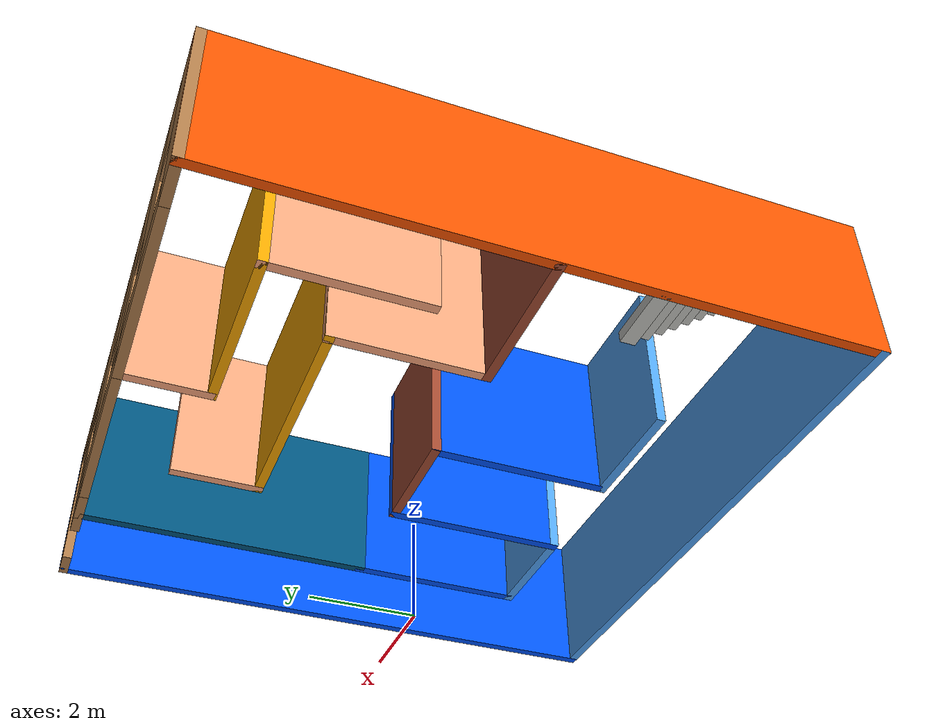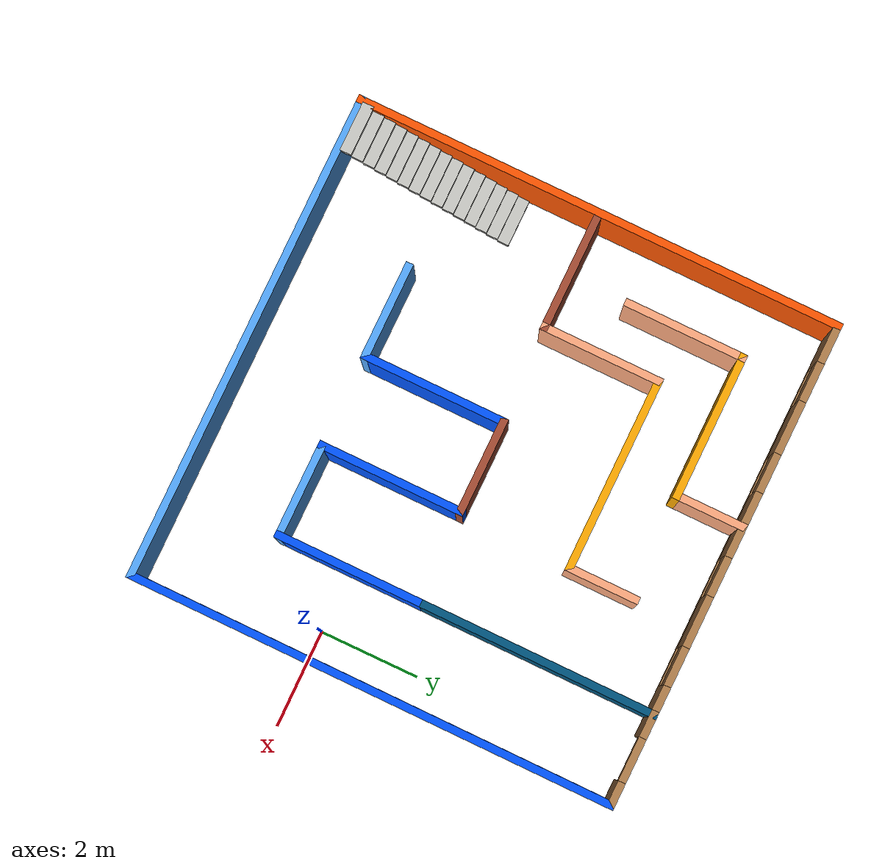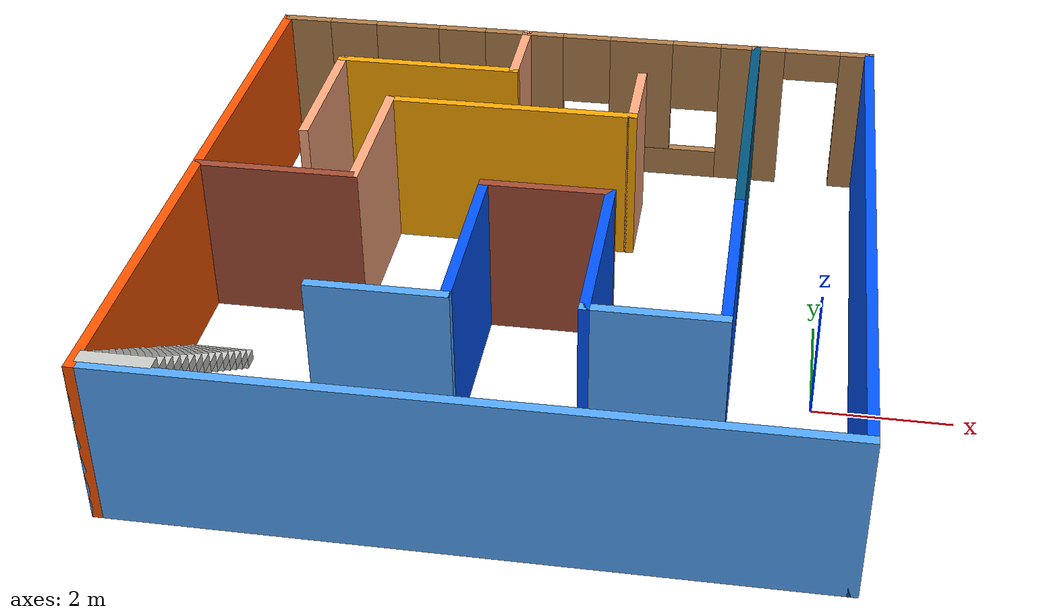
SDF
<?xml version='1.0'?>
<sdf version='1.6'>
  <model name='building_M'>
    <pose frame=''>-4.32693 1.3916 0 0 -0 0</pose>
    <link name='Stairs_0'>
      <visual name='Stairs_0_Visual_0'>
        <pose frame=''>-4.40231 -1.49296 0.083333 0 -0 0</pose>
        <geometry>
          <box>
            <size>1 0.233333 0.166667</size>
          </box>
        </geometry>
        <material>
          <script>
            <uri>file://media/materials/scripts/gazebo.material</uri>
            <name>Gazebo/CeilingTiled</name>
          </script>
          <ambient>1 1 1 1</ambient>
        </material>
      </visual>
      <collision name='Stairs_0_Collision_0'>
        <geometry>
          <box>
            <size>1 0.233333 0.166667</size>
          </box>
        </geometry>
        <pose frame=''>-4.40231 -1.49296 0.083333 0 -0 0</pose>
      </collision>
      <visual name='Stairs_0_Visual_1'>
        <pose frame=''>-4.40231 -1.72629 0.25 0 -0 0</pose>
        <geometry>
          <box>
            <size>1 0.233333 0.166667</size>
          </box>
        </geometry>
        <material>
          <script>
            <uri>file://media/materials/scripts/gazebo.material</uri>
            <name>Gazebo/CeilingTiled</name>
          </script>
          <ambient>1 1 1 1</ambient>
        </material>
      </visual>
      <collision name='Stairs_0_Collision_1'>
        <geometry>
          <box>
            <size>1 0.233333 0.166667</size>
          </box>
        </geometry>
        <pose frame=''>-4.40231 -1.72629 0.25 0 -0 0</pose>
      </collision>
      <visual name='Stairs_0_Visual_2'>
        <pose frame=''>-4.40231 -1.95962 0.416667 0 -0 0</pose>
        <geometry>
          <box>
            <size>1 0.233333 0.166667</size>
          </box>
        </geometry>
        <material>
          <script>
            <uri>file://media/materials/scripts/gazebo.material</uri>
            <name>Gazebo/CeilingTiled</name>
          </script>
          <ambient>1 1 1 1</ambient>
        </material>
      </visual>
      <collision name='Stairs_0_Collision_2'>
        <geometry>
          <box>
            <size>1 0.233333 0.166667</size>
          </box>
        </geometry>
        <pose frame=''>-4.40231 -1.95962 0.416667 0 -0 0</pose>
      </collision>
      <visual name='Stairs_0_Visual_3'>
        <pose frame=''>-4.40231 -2.19295 0.583333 0 -0 0</pose>
        <geometry>
          <box>
            <size>1 0.233333 0.166667</size>
          </box>
        </geometry>
        <material>
          <script>
            <uri>file://media/materials/scripts/gazebo.material</uri>
            <name>Gazebo/CeilingTiled</name>
          </script>
          <ambient>1 1 1 1</ambient>
        </material>
      </visual>
      <collision name='Stairs_0_Collision_3'>
        <geometry>
          <box>
            <size>1 0.233333 0.166667</size>
          </box>
        </geometry>
        <pose frame=''>-4.40231 -2.19295 0.583333 0 -0 0</pose>
      </collision>
      <visual name='Stairs_0_Visual_4'>
        <pose frame=''>-4.40231 -2.42629 0.75 0 -0 0</pose>
        <geometry>
          <box>
            <size>1 0.233333 0.166667</size>
          </box>
        </geometry>
        <material>
          <script>
            <uri>file://media/materials/scripts/gazebo.material</uri>
            <name>Gazebo/CeilingTiled</name>
          </script>
          <ambient>1 1 1 1</ambient>
        </material>
      </visual>
      <collision name='Stairs_0_Collision_4'>
        <geometry>
          <box>
            <size>1 0.233333 0.166667</size>
          </box>
        </geometry>
        <pose frame=''>-4.40231 -2.42629 0.75 0 -0 0</pose>
      </collision>
      <visual name='Stairs_0_Visual_5'>
        <pose frame=''>-4.40231 -2.65962 0.916667 0 -0 0</pose>
        <geometry>
          <box>
            <size>1 0.233333 0.166667</size>
          </box>
        </geometry>
        <material>
          <script>
            <uri>file://media/materials/scripts/gazebo.material</uri>
            <name>Gazebo/CeilingTiled</name>
          </script>
          <ambient>1 1 1 1</ambient>
        </material>
      </visual>
      <collision name='Stairs_0_Collision_5'>
        <geometry>
          <box>
            <size>1 0.233333 0.166667</size>
          </box>
        </geometry>
        <pose frame=''>-4.40231 -2.65962 0.916667 0 -0 0</pose>
      </collision>
      <visual name='Stairs_0_Visual_6'>
        <pose frame=''>-4.40231 -2.89296 1.08333 0 -0 0</pose>
        <geometry>
          <box>
            <size>1 0.233333 0.166667</size>
          </box>
        </geometry>
        <material>
          <script>
            <uri>file://media/materials/scripts/gazebo.material</uri>
            <name>Gazebo/CeilingTiled</name>
          </script>
          <ambient>1 1 1 1</ambient>
        </material>
      </visual>
      <collision name='Stairs_0_Collision_6'>
        <geometry>
          <box>
            <size>1 0.233333 0.166667</size>
          </box>
        </geometry>
        <pose frame=''>-4.40231 -2.89296 1.08333 0 -0 0</pose>
      </collision>
      <visual name='Stairs_0_Visual_7'>
        <pose frame=''>-4.40231 -3.12629 1.25 0 -0 0</pose>
        <geometry>
          <box>
            <size>1 0.233333 0.166667</size>
          </box>
        </geometry>
        <material>
          <script>
            <uri>file://media/materials/scripts/gazebo.material</uri>
            <name>Gazebo/CeilingTiled</name>
          </script>
          <ambient>1 1 1 1</ambient>
        </material>
      </visual>
      <collision name='Stairs_0_Collision_7'>
        <geometry>
          <box>
            <size>1 0.233333 0.166667</size>
          </box>
        </geometry>
        <pose frame=''>-4.40231 -3.12629 1.25 0 -0 0</pose>
      </collision>
      <visual name='Stairs_0_Visual_8'>
        <pose frame=''>-4.40231 -3.35962 1.41667 0 -0 0</pose>
        <geometry>
          <box>
            <size>1 0.233333 0.166667</size>
          </box>
        </geometry>
        <material>
          <script>
            <uri>file://media/materials/scripts/gazebo.material</uri>
            <name>Gazebo/CeilingTiled</name>
          </script>
          <ambient>1 1 1 1</ambient>
        </material>
      </visual>
      <collision name='Stairs_0_Collision_8'>
        <geometry>
          <box>
            <size>1 0.233333 0.166667</size>
          </box>
        </geometry>
        <pose frame=''>-4.40231 -3.35962 1.41667 0 -0 0</pose>
      </collision>
      <visual name='Stairs_0_Visual_9'>
        <pose frame=''>-4.40231 -3.59295 1.58333 0 -0 0</pose>
        <geometry>
          <box>
            <size>1 0.233333 0.166667</size>
          </box>
        </geometry>
        <material>
          <script>
            <uri>file://media/materials/scripts/gazebo.material</uri>
            <name>Gazebo/CeilingTiled</name>
          </script>
          <ambient>1 1 1 1</ambient>
        </material>
      </visual>
      <collision name='Stairs_0_Collision_9'>
        <geometry>
          <box>
            <size>1 0.233333 0.166667</size>
          </box>
        </geometry>
        <pose frame=''>-4.40231 -3.59295 1.58333 0 -0 0</pose>
      </collision>
      <visual name='Stairs_0_Visual_10'>
        <pose frame=''>-4.40231 -3.82629 1.75 0 -0 0</pose>
        <geometry>
          <box>
            <size>1 0.233333 0.166667</size>
          </box>
        </geometry>
        <material>
          <script>
            <uri>file://media/materials/scripts/gazebo.material</uri>
            <name>Gazebo/CeilingTiled</name>
          </script>
          <ambient>1 1 1 1</ambient>
        </material>
      </visual>
      <collision name='Stairs_0_Collision_10'>
        <geometry>
          <box>
            <size>1 0.233333 0.166667</size>
          </box>
        </geometry>
        <pose frame=''>-4.40231 -3.82629 1.75 0 -0 0</pose>
      </collision>
      <visual name='Stairs_0_Visual_11'>
        <pose frame=''>-4.40231 -4.05962 1.91667 0 -0 0</pose>
        <geometry>
          <box>
            <size>1 0.233333 0.166667</size>
          </box>
        </geometry>
        <material>
          <script>
            <uri>file://media/materials/scripts/gazebo.material</uri>
            <name>Gazebo/CeilingTiled</name>
          </script>
          <ambient>1 1 1 1</ambient>
        </material>
      </visual>
      <collision name='Stairs_0_Collision_11'>
        <geometry>
          <box>
            <size>1 0.233333 0.166667</size>
          </box>
        </geometry>
        <pose frame=''>-4.40231 -4.05962 1.91667 0 -0 0</pose>
      </collision>
      <visual name='Stairs_0_Visual_12'>
        <pose frame=''>-4.40231 -4.29296 2.08333 0 -0 0</pose>
        <geometry>
          <box>
            <size>1 0.233333 0.166667</size>
          </box>
        </geometry>
        <material>
          <script>
            <uri>file://media/materials/scripts/gazebo.material</uri>
            <name>Gazebo/CeilingTiled</name>
          </script>
          <ambient>1 1 1 1</ambient>
        </material>
      </visual>
      <collision name='Stairs_0_Collision_12'>
        <geometry>
          <box>
            <size>1 0.233333 0.166667</size>
          </box>
        </geometry>
        <pose frame=''>-4.40231 -4.29296 2.08333 0 -0 0</pose>
      </collision>
      <visual name='Stairs_0_Visual_13'>
        <pose frame=''>-4.40231 -4.52629 2.25 0 -0 0</pose>
        <geometry>
          <box>
            <size>1 0.233333 0.166667</size>
          </box>
        </geometry>
        <material>
          <script>
            <uri>file://media/materials/scripts/gazebo.material</uri>
            <name>Gazebo/CeilingTiled</name>
          </script>
          <ambient>1 1 1 1</ambient>
        </material>
      </visual>
      <collision name='Stairs_0_Collision_13'>
        <geometry>
          <box>
            <size>1 0.233333 0.166667</size>
          </box>
        </geometry>
        <pose frame=''>-4.40231 -4.52629 2.25 0 -0 0</pose>
      </collision>
      <visual name='Stairs_0_Visual_14'>
        <pose frame=''>-4.40231 -4.75962 2.41667 0 -0 0</pose>
        <geometry>
          <box>
            <size>1 0.233333 0.166667</size>
          </box>
        </geometry>
        <material>
          <script>
            <uri>file://media/materials/scripts/gazebo.material</uri>
            <name>Gazebo/CeilingTiled</name>
          </script>
          <ambient>1 1 1 1</ambient>
        </material>
      </visual>
      <collision name='Stairs_0_Collision_14'>
        <geometry>
          <box>
            <size>1 0.233333 0.166667</size>
          </box>
        </geometry>
        <pose frame=''>-4.40231 -4.75962 2.41667 0 -0 0</pose>
      </collision>
    </link>
    <link name='Wall_35'>
      <collision name='Wall_35_Collision'>
        <geometry>
          <box>
            <size>10 0.15 2.5</size>
          </box>
        </geometry>
        <pose frame=''>0 0 1.25 0 -0 0</pose>
      </collision>
      <visual name='Wall_35_Visual'>
        <pose frame=''>0 0 1.25 0 -0 0</pose>
        <geometry>
          <box>
            <size>10 0.15 2.5</size>
          </box>
        </geometry>
        <material>
          <script>
            <uri>file://media/materials/scripts/gazebo.material</uri>
            <name>Gazebo/Grey</name>
          </script>
          <ambient>1 0.333333 0 1</ambient>
        </material>
      </visual>
      <pose frame=''>-4.925 0 0 0 0 -1.5708</pose>
    </link>
    <link name='Wall_36'>
      <collision name='Wall_36_Collision'>
        <geometry>
          <box>
            <size>10 0.15 2.5</size>
          </box>
        </geometry>
        <pose frame=''>0 0 1.25 0 -0 0</pose>
      </collision>
      <visual name='Wall_36_Visual'>
        <pose frame=''>0 0 1.25 0 -0 0</pose>
        <geometry>
          <box>
            <size>10 0.15 2.5</size>
          </box>
        </geometry>
        <material>
          <script>
            <uri>file://media/materials/scripts/gazebo.material</uri>
            <name>Gazebo/Grey</name>
          </script>
          <ambient>0.333333 0.666667 1 1</ambient>
        </material>
      </visual>
      <pose frame=''>0 -4.925 0 0 -0 0</pose>
    </link>
    <link name='Wall_37'>
      <collision name='Wall_37_Collision'>
        <geometry>
          <box>
            <size>10 0.15 2.5</size>
          </box>
        </geometry>
        <pose frame=''>0 0 1.25 0 -0 0</pose>
      </collision>
      <visual name='Wall_37_Visual'>
        <pose frame=''>0 0 1.25 0 -0 0</pose>
        <geometry>
          <box>
            <size>10 0.15 2.5</size>
          </box>
        </geometry>
        <material>
          <script>
            <uri>file://media/materials/scripts/gazebo.material</uri>
            <name>Gazebo/Grey</name>
          </script>
          <ambient>0 0.333333 1 1</ambient>
        </material>
      </visual>
      <pose frame=''>4.925 0 0 0 -0 1.5708</pose>
    </link>
    <link name='Wall_38'>
      <pose frame=''>4 4.925 0 0 -0 3.14159</pose>
      <visual name='Wall_38_Visual_0'>
        <pose frame=''>-0.727767 0 1.25 0 -0 0</pose>
        <geometry>
          <box>
            <size>0.544466 0.15 2.5</size>
          </box>
        </geometry>
        <material>
          <script>
            <uri>file://media/materials/scripts/gazebo.material</uri>
            <name>Gazebo/Wood</name>
          </script>
          <ambient>1 1 1 1</ambient>
        </material>
      </visual>
      <collision name='Wall_38_Collision_0'>
        <geometry>
          <box>
            <size>0.544466 0.15 2.5</size>
          </box>
        </geometry>
        <pose frame=''>-0.727767 0 1.25 0 -0 0</pose>
      </collision>
      <visual name='Wall_38_Visual_1'>
        <pose frame=''>0.722233 0 1.25 0 -0 0</pose>
        <geometry>
          <box>
            <size>0.555534 0.15 2.5</size>
          </box>
        </geometry>
        <material>
          <script>
            <uri>file://media/materials/scripts/gazebo.material</uri>
            <name>Gazebo/Wood</name>
          </script>
          <ambient>1 1 1 1</ambient>
        </material>
      </visual>
      <collision name='Wall_38_Collision_1'>
        <geometry>
          <box>
            <size>0.555534 0.15 2.5</size>
          </box>
        </geometry>
        <pose frame=''>0.722233 0 1.25 0 -0 0</pose>
      </collision>
      <visual name='Wall_38_Visual_2'>
        <pose frame=''>-0.005534 0 2.25 0 -0 0</pose>
        <geometry>
          <box>
            <size>0.9 0.15 0.5</size>
          </box>
        </geometry>
        <material>
          <script>
            <uri>file://media/materials/scripts/gazebo.material</uri>
            <name>Gazebo/Wood</name>
          </script>
          <ambient>1 1 1 1</ambient>
        </material>
      </visual>
      <collision name='Wall_38_Collision_2'>
        <geometry>
          <box>
            <size>0.9 0.15 0.5</size>
          </box>
        </geometry>
        <pose frame=''>-0.005534 0 2.25 0 -0 0</pose>
      </collision>
    </link>
    <link name='Wall_39'>
      <collision name='Wall_39_Collision'>
        <geometry>
          <box>
            <size>5 0.15 2.5</size>
          </box>
        </geometry>
        <pose frame=''>0 0 1.25 0 -0 0</pose>
      </collision>
      <visual name='Wall_39_Visual'>
        <pose frame=''>0 0 1.25 0 -0 0</pose>
        <geometry>
          <box>
            <size>5 0.15 2.5</size>
          </box>
        </geometry>
        <material>
          <script>
            <uri>file://media/materials/scripts/gazebo.material</uri>
            <name>Gazebo/Grey</name>
          </script>
          <ambient>0 0.333333 0.498039 1</ambient>
        </material>
      </visual>
      <pose frame=''>3.075 2.5 0 0 0 -1.5708</pose>
    </link>
    <link name='Wall_40'>
      <collision name='Wall_40_Collision'>
        <geometry>
          <box>
            <size>3 0.15 2.5</size>
          </box>
        </geometry>
        <pose frame=''>0 0 1.25 0 -0 0</pose>
      </collision>
      <visual name='Wall_40_Visual'>
        <pose frame=''>0 0 1.25 0 -0 0</pose>
        <geometry>
          <box>
            <size>3 0.15 2.5</size>
          </box>
        </geometry>
        <material>
          <script>
            <uri>file://media/materials/scripts/gazebo.material</uri>
            <name>Gazebo/Grey</name>
          </script>
          <ambient>0 0.333333 1 1</ambient>
        </material>
      </visual>
      <pose frame=''>3.075 -1.35 0 0 0 -1.5708</pose>
    </link>
    <link name='Wall_41'>
      <collision name='Wall_41_Collision'>
        <geometry>
          <box>
            <size>2 0.15 2.5</size>
          </box>
        </geometry>
        <pose frame=''>0 0 1.25 0 -0 0</pose>
      </collision>
      <visual name='Wall_41_Visual'>
        <pose frame=''>0 0 1.25 0 -0 0</pose>
        <geometry>
          <box>
            <size>2 0.15 2.5</size>
          </box>
        </geometry>
        <material>
          <script>
            <uri>file://media/materials/scripts/gazebo.material</uri>
            <name>Gazebo/Grey</name>
          </script>
          <ambient>0.333333 0.666667 1 1</ambient>
        </material>
      </visual>
      <pose frame=''>2.15 -2.775 0 0 -0 3.14159</pose>
    </link>
    <link name='Wall_42'>
      <collision name='Wall_42_Collision'>
        <geometry>
          <box>
            <size>3 0.15 2.5</size>
          </box>
        </geometry>
        <pose frame=''>0 0 1.25 0 -0 0</pose>
      </collision>
      <visual name='Wall_42_Visual'>
        <pose frame=''>0 0 1.25 0 -0 0</pose>
        <geometry>
          <box>
            <size>3 0.15 2.5</size>
          </box>
        </geometry>
        <material>
          <script>
            <uri>file://media/materials/scripts/gazebo.material</uri>
            <name>Gazebo/Grey</name>
          </script>
          <ambient>0 0.333333 1 1</ambient>
        </material>
      </visual>
      <pose frame=''>1.225 -1.35 0 0 -0 1.5708</pose>
    </link>
    <link name='Wall_43'>
      <collision name='Wall_43_Collision'>
        <geometry>
          <box>
            <size>2 0.15 2.5</size>
          </box>
        </geometry>
        <pose frame=''>0 0 1.25 0 -0 0</pose>
      </collision>
      <visual name='Wall_43_Visual'>
        <pose frame=''>0 0 1.25 0 -0 0</pose>
        <geometry>
          <box>
            <size>2 0.15 2.5</size>
          </box>
        </geometry>
        <material>
          <script>
            <uri>file://media/materials/scripts/gazebo.material</uri>
            <name>Gazebo/Bricks</name>
          </script>
          <ambient>1 1 1 1</ambient>
        </material>
      </visual>
      <pose frame=''>0.3 0.075 0 0 -0 3.14159</pose>
    </link>
    <link name='Wall_44'>
      <collision name='Wall_44_Collision'>
        <geometry>
          <box>
            <size>3 0.15 2.5</size>
          </box>
        </geometry>
        <pose frame=''>0 0 1.25 0 -0 0</pose>
      </collision>
      <visual name='Wall_44_Visual'>
        <pose frame=''>0 0 1.25 0 -0 0</pose>
        <geometry>
          <box>
            <size>3 0.15 2.5</size>
          </box>
        </geometry>
        <material>
          <script>
            <uri>file://media/materials/scripts/gazebo.material</uri>
            <name>Gazebo/Grey</name>
          </script>
          <ambient>0 0.333333 1 1</ambient>
        </material>
      </visual>
      <pose frame=''>-0.625 -1.35 0 0 0 -1.5708</pose>
    </link>
    <link name='Wall_47'>
      <collision name='Wall_47_Collision'>
        <geometry>
          <box>
            <size>2 0.15 2.5</size>
          </box>
        </geometry>
        <pose frame=''>0 0 1.25 0 -0 0</pose>
      </collision>
      <visual name='Wall_47_Visual'>
        <pose frame=''>0 0 1.25 0 -0 0</pose>
        <geometry>
          <box>
            <size>2 0.15 2.5</size>
          </box>
        </geometry>
        <material>
          <script>
            <uri>file://media/materials/scripts/gazebo.material</uri>
            <name>Gazebo/Grey</name>
          </script>
          <ambient>0.333333 0.666667 1 1</ambient>
        </material>
      </visual>
      <pose frame=''>-1.55 -2.775 0 0 -0 3.14159</pose>
    </link>
    <link name='Wall_50'>
      <collision name='Wall_50_Collision'>
        <geometry>
          <box>
            <size>2.5 0.15 2.5</size>
          </box>
        </geometry>
        <pose frame=''>0 0 1.25 0 -0 0</pose>
      </collision>
      <visual name='Wall_50_Visual'>
        <pose frame=''>0 0 1.25 0 -0 0</pose>
        <geometry>
          <box>
            <size>2.5 0.15 2.5</size>
          </box>
        </geometry>
        <material>
          <script>
            <uri>file://media/materials/scripts/gazebo.material</uri>
            <name>Gazebo/Bricks</name>
          </script>
          <ambient>1 1 1 1</ambient>
        </material>
      </visual>
      <pose frame=''>-3.72731 0.003978 0 0 -0 0</pose>
    </link>
    <link name='Wall_51'>
      <collision name='Wall_51_Collision'>
        <geometry>
          <box>
            <size>2.5 0.15 2.5</size>
          </box>
        </geometry>
        <pose frame=''>0 0 1.25 0 -0 0</pose>
      </collision>
      <visual name='Wall_51_Visual'>
        <pose frame=''>0 0 1.25 0 -0 0</pose>
        <geometry>
          <box>
            <size>2.5 0.15 2.5</size>
          </box>
        </geometry>
        <material>
          <script>
            <uri>file://media/materials/scripts/gazebo.material</uri>
            <name>Gazebo/Grey</name>
          </script>
          <ambient>1 0.666667 0.498039 1</ambient>
        </material>
      </visual>
      <pose frame=''>-2.55231 1.17898 0 0 -0 1.5708</pose>
    </link>
    <link name='Wall_52'>
      <collision name='Wall_52_Collision'>
        <geometry>
          <box>
            <size>4 0.15 2.5</size>
          </box>
        </geometry>
        <pose frame=''>0 0 1.25 0 -0 0</pose>
      </collision>
      <visual name='Wall_52_Visual'>
        <pose frame=''>0 0 1.25 0 -0 0</pose>
        <geometry>
          <box>
            <size>4 0.15 2.5</size>
          </box>
        </geometry>
        <material>
          <script>
            <uri>file://media/materials/scripts/gazebo.material</uri>
            <name>Gazebo/Grey</name>
          </script>
          <ambient>1 0.666667 0 1</ambient>
        </material>
      </visual>
      <pose frame=''>-0.627312 2.35398 0 0 -0 0</pose>
    </link>
    <link name='Wall_53'>
      <collision name='Wall_53_Collision'>
        <geometry>
          <box>
            <size>1.5 0.15 2.5</size>
          </box>
        </geometry>
        <pose frame=''>0 0 1.25 0 -0 0</pose>
      </collision>
      <visual name='Wall_53_Visual'>
        <pose frame=''>0 0 1.25 0 -0 0</pose>
        <geometry>
          <box>
            <size>1.5 0.15 2.5</size>
          </box>
        </geometry>
        <material>
          <script>
            <uri>file://media/materials/scripts/gazebo.material</uri>
            <name>Gazebo/Grey</name>
          </script>
          <ambient>1 0.666667 0.498039 1</ambient>
        </material>
      </visual>
      <pose frame=''>1.29769 3.02898 0 0 -0 1.5708</pose>
    </link>
    <link name='Wall_55'>
      <pose frame=''>1.15 4.925 0 0 -0 3.14159</pose>
      <visual name='Wall_55_Visual_0'>
        <pose frame=''>-1.67319 0 1.25 0 -0 0</pose>
        <geometry>
          <box>
            <size>0.653625 0.15 2.5</size>
          </box>
        </geometry>
        <material>
          <script>
            <uri>file://media/materials/scripts/gazebo.material</uri>
            <name>Gazebo/Wood</name>
          </script>
          <ambient>1 1 1 1</ambient>
        </material>
      </visual>
      <collision name='Wall_55_Collision_0'>
        <geometry>
          <box>
            <size>0.653625 0.15 2.5</size>
          </box>
        </geometry>
        <pose frame=''>-1.67319 0 1.25 0 -0 0</pose>
      </collision>
      <visual name='Wall_55_Visual_1'>
        <pose frame=''>0.326812 0 0.25 0 -0 0</pose>
        <geometry>
          <box>
            <size>3.34638 0.15 0.5</size>
          </box>
        </geometry>
        <material>
          <script>
            <uri>file://media/materials/scripts/gazebo.material</uri>
            <name>Gazebo/Wood</name>
          </script>
          <ambient>1 1 1 1</ambient>
        </material>
      </visual>
      <collision name='Wall_55_Collision_1'>
        <geometry>
          <box>
            <size>3.34638 0.15 0.5</size>
          </box>
        </geometry>
        <pose frame=''>0.326812 0 0.25 0 -0 0</pose>
      </collision>
      <visual name='Wall_55_Visual_2'>
        <pose frame=''>-0.021627 0 1.5 0 -0 0</pose>
        <geometry>
          <box>
            <size>1.0495 0.15 2</size>
          </box>
        </geometry>
        <material>
          <script>
            <uri>file://media/materials/scripts/gazebo.material</uri>
            <name>Gazebo/Wood</name>
          </script>
          <ambient>1 1 1 1</ambient>
        </material>
      </visual>
      <collision name='Wall_55_Collision_2'>
        <geometry>
          <box>
            <size>1.0495 0.15 2</size>
          </box>
        </geometry>
        <pose frame=''>-0.021627 0 1.5 0 -0 0</pose>
      </collision>
      <visual name='Wall_55_Visual_3'>
        <pose frame=''>1.65156 0 1.5 0 -0 0</pose>
        <geometry>
          <box>
            <size>0.696878 0.15 2</size>
          </box>
        </geometry>
        <material>
          <script>
            <uri>file://media/materials/scripts/gazebo.material</uri>
            <name>Gazebo/Wood</name>
          </script>
          <ambient>1 1 1 1</ambient>
        </material>
      </visual>
      <collision name='Wall_55_Collision_3'>
        <geometry>
          <box>
            <size>0.696878 0.15 2</size>
          </box>
        </geometry>
        <pose frame=''>1.65156 0 1.5 0 -0 0</pose>
      </collision>
      <visual name='Wall_55_Visual_4'>
        <pose frame=''>-0.946375 0 1.9 0 -0 0</pose>
        <geometry>
          <box>
            <size>0.8 0.15 1.2</size>
          </box>
        </geometry>
        <material>
          <script>
            <uri>file://media/materials/scripts/gazebo.material</uri>
            <name>Gazebo/Wood</name>
          </script>
          <ambient>1 1 1 1</ambient>
        </material>
      </visual>
      <collision name='Wall_55_Collision_4'>
        <geometry>
          <box>
            <size>0.8 0.15 1.2</size>
          </box>
        </geometry>
        <pose frame=''>-0.946375 0 1.9 0 -0 0</pose>
      </collision>
      <visual name='Wall_55_Visual_5'>
        <pose frame=''>0.903122 0 1.9 0 -0 0</pose>
        <geometry>
          <box>
            <size>0.8 0.15 1.2</size>
          </box>
        </geometry>
        <material>
          <script>
            <uri>file://media/materials/scripts/gazebo.material</uri>
            <name>Gazebo/Wood</name>
          </script>
          <ambient>1 1 1 1</ambient>
        </material>
      </visual>
      <collision name='Wall_55_Collision_5'>
        <geometry>
          <box>
            <size>0.8 0.15 1.2</size>
          </box>
        </geometry>
        <pose frame=''>0.903122 0 1.9 0 -0 0</pose>
      </collision>
    </link>
    <link name='Wall_56'>
      <collision name='Wall_56_Collision'>
        <geometry>
          <box>
            <size>1.5 0.15 2.5</size>
          </box>
        </geometry>
        <pose frame=''>0 0 1.25 0 -0 0</pose>
      </collision>
      <visual name='Wall_56_Visual'>
        <pose frame=''>0 0 1.25 0 -0 0</pose>
        <geometry>
          <box>
            <size>1.5 0.15 2.5</size>
          </box>
        </geometry>
        <material>
          <script>
            <uri>file://media/materials/scripts/gazebo.material</uri>
            <name>Gazebo/Grey</name>
          </script>
          <ambient>1 0.666667 0.498039 1</ambient>
        </material>
      </visual>
      <pose frame=''>-0.774999 4.25 0 0 0 -1.5708</pose>
    </link>
    <link name='Wall_57'>
      <collision name='Wall_57_Collision'>
        <geometry>
          <box>
            <size>3 0.15 2.5</size>
          </box>
        </geometry>
        <pose frame=''>0 0 1.25 0 -0 0</pose>
      </collision>
      <visual name='Wall_57_Visual'>
        <pose frame=''>0 0 1.25 0 -0 0</pose>
        <geometry>
          <box>
            <size>3 0.15 2.5</size>
          </box>
        </geometry>
        <material>
          <script>
            <uri>file://media/materials/scripts/gazebo.material</uri>
            <name>Gazebo/Grey</name>
          </script>
          <ambient>1 0.666667 0 1</ambient>
        </material>
      </visual>
      <pose frame=''>-2.2 3.575 0 0 -0 3.14159</pose>
    </link>
    <link name='Wall_58'>
      <collision name='Wall_58_Collision'>
        <geometry>
          <box>
            <size>2.5 0.15 2.5</size>
          </box>
        </geometry>
        <pose frame=''>0 0 1.25 0 -0 0</pose>
      </collision>
      <visual name='Wall_58_Visual'>
        <pose frame=''>0 0 1.25 0 -0 0</pose>
        <geometry>
          <box>
            <size>2.5 0.15 2.5</size>
          </box>
        </geometry>
        <material>
          <script>
            <uri>file://media/materials/scripts/gazebo.material</uri>
            <name>Gazebo/Grey</name>
          </script>
          <ambient>1 0.666667 0.498039 1</ambient>
        </material>
      </visual>
      <pose frame=''>-3.625 2.4 0 0 0 -1.5708</pose>
    </link>
    <link name='Wall_60'>
      <pose frame=''>-2.85 4.925 0 0 -0 0</pose>
      <visual name='Wall_60_Visual_0'>
        <pose frame=''>-1.73267 0 1.25 0 -0 0</pose>
        <geometry>
          <box>
            <size>0.834662 0.15 2.5</size>
          </box>
        </geometry>
        <material>
          <script>
            <uri>file://media/materials/scripts/gazebo.material</uri>
            <name>Gazebo/Wood</name>
          </script>
          <ambient>1 1 1 1</ambient>
        </material>
      </visual>
      <collision name='Wall_60_Collision_0'>
        <geometry>
          <box>
            <size>0.834662 0.15 2.5</size>
          </box>
        </geometry>
        <pose frame=''>-1.73267 0 1.25 0 -0 0</pose>
      </collision>
      <visual name='Wall_60_Visual_1'>
        <pose frame=''>0.417331 0 0.25 0 -0 0</pose>
        <geometry>
          <box>
            <size>3.46534 0.15 0.5</size>
          </box>
        </geometry>
        <material>
          <script>
            <uri>file://media/materials/scripts/gazebo.material</uri>
            <name>Gazebo/Wood</name>
          </script>
          <ambient>1 1 1 1</ambient>
        </material>
      </visual>
      <collision name='Wall_60_Collision_1'>
        <geometry>
          <box>
            <size>3.46534 0.15 0.5</size>
          </box>
        </geometry>
        <pose frame=''>0.417331 0 0.25 0 -0 0</pose>
      </collision>
      <visual name='Wall_60_Visual_2'>
        <pose frame=''>0.024326 0 1.5 0 -0 0</pose>
        <geometry>
          <box>
            <size>1.07933 0.15 2</size>
          </box>
        </geometry>
        <material>
          <script>
            <uri>file://media/materials/scripts/gazebo.material</uri>
            <name>Gazebo/Wood</name>
          </script>
          <ambient>1 1 1 1</ambient>
        </material>
      </visual>
      <collision name='Wall_60_Collision_2'>
        <geometry>
          <box>
            <size>1.07933 0.15 2</size>
          </box>
        </geometry>
        <pose frame=''>0.024326 0 1.5 0 -0 0</pose>
      </collision>
      <visual name='Wall_60_Visual_3'>
        <pose frame=''>1.757 0 1.5 0 -0 0</pose>
        <geometry>
          <box>
            <size>0.78601 0.15 2</size>
          </box>
        </geometry>
        <material>
          <script>
            <uri>file://media/materials/scripts/gazebo.material</uri>
            <name>Gazebo/Wood</name>
          </script>
          <ambient>1 1 1 1</ambient>
        </material>
      </visual>
      <collision name='Wall_60_Collision_3'>
        <geometry>
          <box>
            <size>0.78601 0.15 2</size>
          </box>
        </geometry>
        <pose frame=''>1.757 0 1.5 0 -0 0</pose>
      </collision>
      <visual name='Wall_60_Visual_4'>
        <pose frame=''>-0.915338 0 1.9 0 -0 0</pose>
        <geometry>
          <box>
            <size>0.8 0.15 1.2</size>
          </box>
        </geometry>
        <material>
          <script>
            <uri>file://media/materials/scripts/gazebo.material</uri>
            <name>Gazebo/Wood</name>
          </script>
          <ambient>1 1 1 1</ambient>
        </material>
      </visual>
      <collision name='Wall_60_Collision_4'>
        <geometry>
          <box>
            <size>0.8 0.15 1.2</size>
          </box>
        </geometry>
        <pose frame=''>-0.915338 0 1.9 0 -0 0</pose>
      </collision>
      <visual name='Wall_60_Visual_5'>
        <pose frame=''>0.96399 0 1.9 0 -0 0</pose>
        <geometry>
          <box>
            <size>0.8 0.15 1.2</size>
          </box>
        </geometry>
        <material>
          <script>
            <uri>file://media/materials/scripts/gazebo.material</uri>
            <name>Gazebo/Wood</name>
          </script>
          <ambient>1 1 1 1</ambient>
        </material>
      </visual>
      <collision name='Wall_60_Collision_5'>
        <geometry>
          <box>
            <size>0.8 0.15 1.2</size>
          </box>
        </geometry>
        <pose frame=''>0.96399 0 1.9 0 -0 0</pose>
      </collision>
    </link>
    <static>1</static>
  </model>
</sdf>
